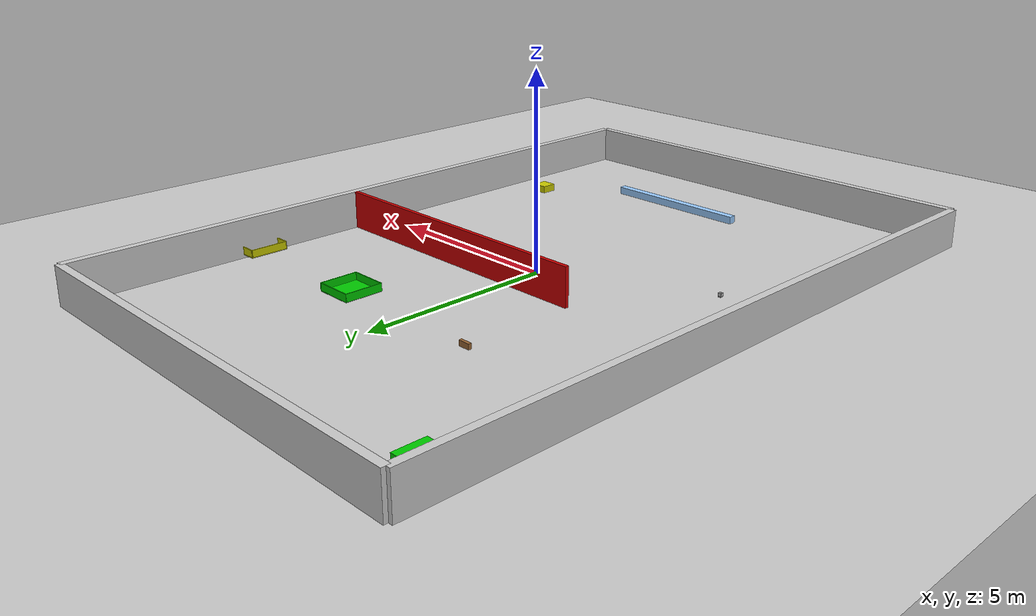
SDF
<sdf version="1.6">
 <world name="lab_world">
  <plugin name="gazebo_ros_state" filename="libgazebo_ros_state.so">
   <ros><namespace>/</namespace></ros>
   <update_rate>50.0</update_rate>
  </plugin>
  <include><uri>model://ground_plane</uri></include>
  <include><uri>model://sun</uri></include>
  <scene><ambient>0.4 0.4 0.4 1</ambient><background>0.7 0.7 0.7 1</background><shadows>true</shadows></scene>
  <model name="wall_north">
   <static>true</static>
   <pose>0 9 0.5 0 0 0</pose>
   <link name="link">
    <collision name="collision"><geometry><box><size>12 0.2 1</size></box></geometry></collision>
    <visual name="visual">
     <geometry><box><size>12 0.2 1</size></box></geometry>
     <material>
      <ambient>0.8 0.8 0.8 1</ambient>
      <diffuse>0.8 0.8 0.8 1</diffuse>
      <specular>0.1 0.1 0.1 1</specular>
     </material>
    </visual>
   </link>
  </model>
  <model name="wall_south">
   <static>true</static>
   <pose>0 -9 0.5 0 0 0</pose>
   <link name="link">
    <collision name="collision"><geometry><box><size>12 0.2 1</size></box></geometry></collision>
    <visual name="visual">
     <geometry><box><size>12 0.2 1</size></box></geometry>
     <material>
      <ambient>0.8 0.8 0.8 1</ambient>
      <diffuse>0.8 0.8 0.8 1</diffuse>
      <specular>0.1 0.1 0.1 1</specular>
     </material>
    </visual>
   </link>
  </model>
  <model name="green_station">
   <static>true</static>
   <pose>2.0 4.0 0.1 0 0 0</pose>
   <link name="base">
    <visual name="v_floor">
     <geometry><box><size>1.0 1.0 0.02</size></box></geometry>
     <material><ambient>0 0.8 0 1</ambient><diffuse>0 0.8 0 1</diffuse></material>
    </visual>
    <collision name="c_floor"><geometry><box><size>1.0 1.0 0.02</size></box></geometry></collision>
    <visual name="v_n">
     <pose>0 0.49 0.1 0 0 0</pose>
     <geometry><box><size>1.0 0.02 0.2</size></box></geometry>
     <material><ambient>0 0.8 0 1</ambient><diffuse>0 0.8 0 1</diffuse></material>
    </visual>
    <collision name="c_n">
     <pose>0 0.49 0.1 0 0 0</pose>
     <geometry><box><size>1.0 0.02 0.2</size></box></geometry>
    </collision>
    <visual name="v_s">
     <pose>0 -0.49 0.1 0 0 0</pose>
     <geometry><box><size>1.0 0.02 0.2</size></box></geometry>
     <material><ambient>0 0.8 0 1</ambient><diffuse>0 0.8 0 1</diffuse></material>
    </visual>
    <collision name="c_s">
     <pose>0 -0.49 0.1 0 0 0</pose>
     <geometry><box><size>1.0 0.02 0.2</size></box></geometry>
    </collision>
    <visual name="v_e">
     <pose>0.49 0 0.1 0 0 0</pose>
     <geometry><box><size>0.02 1.0 0.2</size></box></geometry>
     <material><ambient>0 0.8 0 1</ambient><diffuse>0 0.8 0 1</diffuse></material>
    </visual>
    <collision name="c_e">
     <pose>0.49 0 0.1 0 0 0</pose>
     <geometry><box><size>0.02 1.0 0.2</size></box></geometry>
    </collision>
    <visual name="v_w">
     <pose>-0.49 0 0.1 0 0 0</pose>
     <geometry><box><size>0.02 1.0 0.2</size></box></geometry>
     <material><ambient>0 0.8 0 1</ambient><diffuse>0 0.8 0 1</diffuse></material>
    </visual>
    <collision name="c_w">
     <pose>-0.49 0 0.1 0 0 0</pose>
     <geometry><box><size>0.02 1.0 0.2</size></box></geometry>
    </collision>
   </link>
  </model>
  <model name="yellow_station">
   <static>true</static>
   <pose>6.0 4.0 0.1 0 0 0</pose>
   <link name="base">
    <visual name="v_floor">
     <geometry><box><size>1.0 1.0 0.02</size></box></geometry>
     <material><ambient>0.8 0.8 0 1</ambient><diffuse>0.8 0.8 0 1</diffuse></material>
    </visual>
    <collision name="c_floor"><geometry><box><size>1.0 1.0 0.02</size></box></geometry></collision>
    <visual name="v_n">
     <pose>0 0.49 0.1 0 0 0</pose>
     <geometry><box><size>1.0 0.02 0.2</size></box></geometry>
     <material><ambient>0.8 0.8 0 1</ambient><diffuse>0.8 0.8 0 1</diffuse></material>
    </visual>
    <collision name="c_n">
     <pose>0 0.49 0.1 0 0 0</pose>
     <geometry><box><size>1.0 0.02 0.2</size></box></geometry>
    </collision>
    <visual name="v_s">
     <pose>0 -0.49 0.1 0 0 0</pose>
     <geometry><box><size>1.0 0.02 0.2</size></box></geometry>
     <material><ambient>0.8 0.8 0 1</ambient><diffuse>0.8 0.8 0 1</diffuse></material>
    </visual>
    <collision name="c_s">
     <pose>0 -0.49 0.1 0 0 0</pose>
     <geometry><box><size>1.0 0.02 0.2</size></box></geometry>
    </collision>
    <visual name="v_e">
     <pose>0.49 0 0.1 0 0 0</pose>
     <geometry><box><size>0.02 1.0 0.2</size></box></geometry>
     <material><ambient>0.8 0.8 0 1</ambient><diffuse>0.8 0.8 0 1</diffuse></material>
    </visual>
    <collision name="c_e">
     <pose>0.49 0 0.1 0 0 0</pose>
     <geometry><box><size>0.02 1.0 0.2</size></box></geometry>
    </collision>
    <visual name="v_w">
     <pose>-0.49 0 0.1 0 0 0</pose>
     <geometry><box><size>0.02 1.0 0.2</size></box></geometry>
     <material><ambient>0.8 0.8 0 1</ambient><diffuse>0.8 0.8 0 1</diffuse></material>
    </visual>
    <collision name="c_w">
     <pose>-0.49 0 0.1 0 0 0</pose>
     <geometry><box><size>0.02 1.0 0.2</size></box></geometry>
    </collision>
   </link>
  </model>
  <model name="wall_east">
   <static>true</static>
   <pose>6 0 0.5 0 0 0</pose>
   <link name="link">
    <collision name="collision"><geometry><box><size>0.2 18 1</size></box></geometry></collision>
    <visual name="visual">
     <geometry><box><size>0.2 18 1</size></box></geometry>
     <material>
      <ambient>0.8 0.8 0.8 1</ambient>
      <diffuse>0.8 0.8 0.8 1</diffuse>
      <specular>0.1 0.1 0.1 1</specular>
     </material>
    </visual>
   </link>
  </model>
  <model name="wall_west">
   <static>true</static>
   <pose>-6 0 0.5 0 0 0</pose>
   <link name="link">
    <collision name="collision"><geometry><box><size>0.2 18 1</size></box></geometry></collision>
    <visual name="visual">
     <geometry><box><size>0.2 18 1</size></box></geometry>
     <material>
      <ambient>0.8 0.8 0.8 1</ambient>
      <diffuse>0.8 0.8 0.8 1</diffuse>
      <specular>0.1 0.1 0.1 1</specular>
     </material>
    </visual>
   </link>
  </model>
  <model name="divider_partition_red">
   <static>true</static>
   <pose>2 1 0.5 0 0 0</pose>
   <link name="link">
    <collision name="collision"><geometry><box><size>8 0.1 1</size></box></geometry></collision>
    <visual name="visual">
     <geometry><box><size>8 0.1 1</size></box></geometry>
     <material><ambient>1 0 0 1</ambient><diffuse>0.8 0 0 1</diffuse><specular>0.1 0 0 1</specular></material>
    </visual>
   </link>
  </model>
  <model name="station_a_assembly">
   <static>true</static>
   <pose>-5.0 7.5 0.1 0 0 0</pose>
   <link name="link">
    <collision name="collision"><geometry><box><size>0.8 0.8 0.2</size></box></geometry></collision>
    <visual name="visual">
     <geometry><box><size>0.8 0.8 0.2</size></box></geometry>
     <material><ambient>0 1 0 1</ambient><diffuse>0 0.8 0 1</diffuse><specular>0 0.1 0 1</specular></material>
    </visual>
   </link>
  </model>
  <model name="storage_parts">
   <static>true</static>
   <pose>4.8 -5 0.1 0 0 0</pose>
   <link name="link">
    <collision name="collision"><geometry><box><size>0.4 0.4 0.2</size></box></geometry></collision>
    <visual name="visual">
     <geometry><box><size>0.4 0.4 0.2</size></box></geometry>
     <material><ambient>1 1 0 1</ambient><diffuse>0.8 0.8 0 1</diffuse><specular>0.1 0.1 0 1</specular></material>
    </visual>
   </link>
  </model>
  <model name="counter_light_blue">
   <static>true</static>
   <pose>1 -6.5 0.1 0 0 0</pose>
   <link name="link">
    <collision name="collision"><geometry><box><size>4 0.2 0.2</size></box></geometry></collision>
    <visual name="visual">
     <geometry><box><size>4 0.2 0.2</size></box></geometry>
     <material>
      <ambient>0.6 0.8 1 1</ambient>
      <diffuse>0.6 0.8 1 1</diffuse>
      <specular>0.1 0.1 0.1 1</specular>
     </material>
    </visual>
   </link>
  </model>
  <model name="pickup_table">
   <static>1</static>
   <pose>-2 4 0.07 0 0 0</pose>
   <link name="link">
    <collision name="col"><geometry><box><size>0.3 0.08 0.14</size></box></geometry></collision>
    <visual name="vis">
     <geometry><box><size>0.3 0.08 0.14</size></box></geometry>
     <material><ambient>0.6 0.4 0.2 1</ambient><diffuse>0.6 0.4 0.2 1</diffuse></material>
    </visual>
   </link>
  </model>
  <model name="place_table">
   <static>1</static>
   <pose>-4 -2 0 0 0 0</pose>
   <link name="body">
    <pose>0 0 0.05 0 0 0</pose>
    <collision name="col"><geometry><box><size>0.08 0.08 0.10</size></box></geometry></collision>
    <visual name="vis">
     <geometry><box><size>0.08 0.08 0.10</size></box></geometry>
     <material>
      <ambient>0.55 0.55 0.55 1</ambient>
      <diffuse>0.55 0.55 0.55 1</diffuse>
      <specular>0.1 0.1 0.1 1</specular>
     </material>
    </visual>
   </link>
   <link name="tag_north">
    <pose>0 0.041 0.060 0 0 0</pose>
    <visual name="vis">
     <geometry><box><size>0.08 0.001 0.08</size></box></geometry>
     <material>
      <script>
       <uri>model://limo_car/media/materials/scripts/apriltag.material</uri>
       <uri>model://limo_car/media/materials/textures/</uri>
       <name>AprilTag_0</name>
      </script>
     </material>
    </visual>
   </link>
   <link name="tag_south">
    <pose>0 -0.041 0.060 0 0 3.14159</pose>
    <visual name="vis">
     <geometry><box><size>0.08 0.001 0.08</size></box></geometry>
     <material>
      <script>
       <uri>model://limo_car/media/materials/scripts/apriltag.material</uri>
       <uri>model://limo_car/media/materials/textures/</uri>
       <name>AprilTag_1</name>
      </script>
     </material>
    </visual>
   </link>
   <link name="tag_east">
    <pose>0.041 0 0.060 0 0 -1.5708</pose>
    <visual name="vis">
     <geometry><box><size>0.08 0.001 0.08</size></box></geometry>
     <material>
      <script>
       <uri>model://limo_car/media/materials/scripts/apriltag.material</uri>
       <uri>model://limo_car/media/materials/textures/</uri>
       <name>AprilTag_2</name>
      </script>
     </material>
    </visual>
   </link>
   <link name="tag_west">
    <pose>-0.041 0 0.060 0 0 1.5708</pose>
    <visual name="vis">
     <geometry><box><size>0.08 0.001 0.08</size></box></geometry>
     <material>
      <script>
       <uri>model://limo_car/media/materials/scripts/apriltag.material</uri>
       <uri>model://limo_car/media/materials/textures/</uri>
       <name>AprilTag_3</name>
      </script>
     </material>
    </visual>
   </link>
  </model>
 </world>
</sdf>
